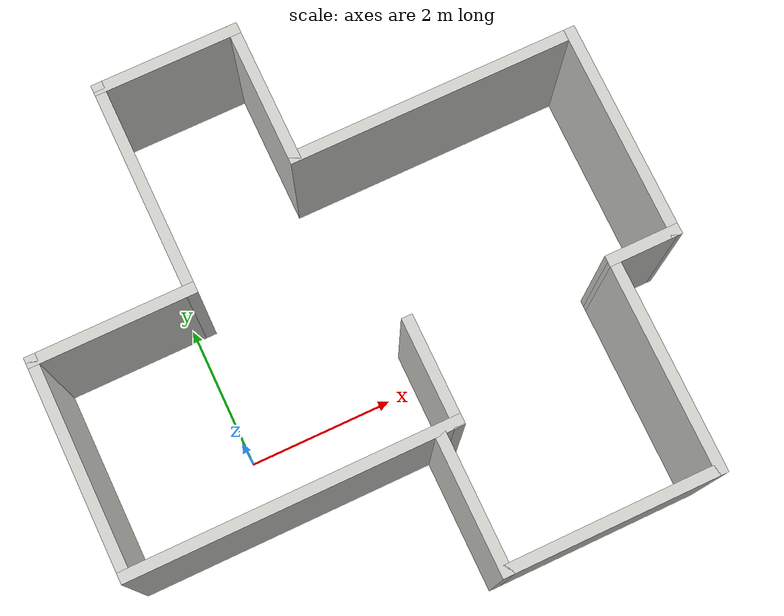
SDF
<?xml version='1.0'?>
<sdf version='1.6'>
  <model name='ekfWallsRight'>
    <pose frame=''>2 1 0 0 -0 -1.5708</pose>
    <link name='Wall_14'>
      <collision name='Wall_14_Collision'>
        <geometry>
          <box>
            <size>2.25 0.15 2.5</size>
          </box>
        </geometry>
        <pose frame=''>0 0 1.25 0 -0 0</pose>
      </collision>
      <visual name='Wall_14_Visual'>
        <pose frame=''>0 0 1.25 0 -0 0</pose>
        <geometry>
          <box>
            <size>2.25 0.15 2.5</size>
          </box>
        </geometry>
        <material>
          <script>
            <uri>file://media/materials/scripts/gazebo.material</uri>
            <name>Gazebo/CeilingTiled</name>
          </script>
	  <ambient>1 1 1 1</ambient>
        </material>
        <meta>
          <layer>0</layer>
        </meta>
      </visual>
      <pose frame=''>-0.924999 -2.85004 0 0 -0 1.5708</pose>
    </link>
    <link name='Wall_15'>
      <collision name='Wall_15_Collision'>
        <geometry>
          <box>
            <size>3 0.15 2.5</size>
          </box>
        </geometry>
        <pose frame=''>0 0 1.25 0 -0 0</pose>
      </collision>
      <visual name='Wall_15_Visual'>
        <pose frame=''>0 0 1.25 0 -0 0</pose>
        <geometry>
          <box>
            <size>3 0.15 2.5</size>
          </box>
        </geometry>
        <material>
          <script>
            <uri>file://media/materials/scripts/gazebo.material</uri>
            <name>Gazebo/CeilingTiled</name>
          </script>
          <ambient>1 1 1 1</ambient>
        </material>
        <meta>
          <layer>0</layer>
        </meta>
      </visual>
      <pose frame=''>-2.35 -1.80004 0 0 -0 3.14159</pose>
    </link>
    <link name='Wall_20'>
      <collision name='Wall_20_Collision'>
        <geometry>
          <box>
            <size>2 0.15 2.5</size>
          </box>
        </geometry>
        <pose frame=''>0 0 1.25 0 -0 0</pose>
      </collision>
      <visual name='Wall_20_Visual'>
        <pose frame=''>0 0 1.25 0 -0 0</pose>
        <geometry>
          <box>
            <size>2 0.15 2.5</size>
          </box>
        </geometry>
        <material>
          <script>
            <uri>file://media/materials/scripts/gazebo.material</uri>
            <name>Gazebo/CeilingTiled</name>
          </script>
          <ambient>1 1 1 1</ambient>
        </material>
        <meta>
          <layer>0</layer>
        </meta>
      </visual>
      <pose frame=''>-3.775 -0.875043 0 0 -0 1.5708</pose>
    </link>
    <link name='Wall_23'>
      <collision name='Wall_23_Collision'>
        <geometry>
          <box>
            <size>2 0.15 2.5</size>
          </box>
        </geometry>
        <pose frame=''>0 0 1.25 0 -0 0</pose>
      </collision>
      <visual name='Wall_23_Visual'>
        <pose frame=''>0 0 1.25 0 -0 0</pose>
        <geometry>
          <box>
            <size>2 0.15 2.5</size>
          </box>
        </geometry>
        <material>
          <script>
            <uri>file://media/materials/scripts/gazebo.material</uri>
            <name>Gazebo/CeilingTiled</name>
          </script>
          <ambient>1 1 1 1</ambient>
        </material>
        <meta>
          <layer>0</layer>
        </meta>
      </visual>
      <pose frame=''>-2.85 0.049957 0 0 -0 0</pose>
    </link>
    <link name='Wall_25'>
      <collision name='Wall_25_Collision'>
        <geometry>
          <box>
            <size>4 0.15 2.5</size>
          </box>
        </geometry>
        <pose frame=''>0 0 1.25 0 -0 0</pose>
      </collision>
      <visual name='Wall_25_Visual'>
        <pose frame=''>0 0 1.25 0 -0 0</pose>
        <geometry>
          <box>
            <size>4 0.15 2.5</size>
          </box>
        </geometry>
        <material>
          <script>
            <uri>file://media/materials/scripts/gazebo.material</uri>
            <name>Gazebo/CeilingTiled</name>
          </script>
          <ambient>1 1 1 1</ambient>
        </material>
        <meta>
          <layer>0</layer>
        </meta>
      </visual>
      <pose frame=''>-1.925 1.97496 0 0 -0 1.5708</pose>
    </link>
    <link name='Wall_26'>
      <collision name='Wall_26_Collision'>
        <geometry>
          <box>
            <size>3 0.15 2.5</size>
          </box>
        </geometry>
        <pose frame=''>0 0 1.25 0 -0 0</pose>
      </collision>
      <visual name='Wall_26_Visual'>
        <pose frame=''>0 0 1.25 0 -0 0</pose>
        <geometry>
          <box>
            <size>3 0.15 2.5</size>
          </box>
        </geometry>
        <material>
          <script>
            <uri>file://media/materials/scripts/gazebo.material</uri>
            <name>Gazebo/CeilingTiled</name>
          </script>
          <ambient>1 1 1 1</ambient>
        </material>
        <meta>
          <layer>0</layer>
        </meta>
      </visual>
      <pose frame=''>-0.5 3.89833 0 0 0 -0.001139</pose>
    </link>
    <link name='Wall_37'>
      <collision name='Wall_37_Collision'>
        <geometry>
          <box>
            <size>1 0.15 2.5</size>
          </box>
        </geometry>
        <pose frame=''>0 0 1.25 0 -0 0</pose>
      </collision>
      <visual name='Wall_37_Visual'>
        <pose frame=''>0 0 1.25 0 -0 0</pose>
        <geometry>
          <box>
            <size>1 0.15 2.5</size>
          </box>
        </geometry>
        <material>
          <script>
            <uri>file://media/materials/scripts/gazebo.material</uri>
            <name>Gazebo/CeilingTiled</name>
          </script>
          <ambient>1 1 1 1</ambient>
        </material>
        <meta>
          <layer>0</layer>
        </meta>
      </visual>
      <pose frame=''>0.924999 3.47171 0 0 0 -1.5708</pose>
    </link>
    <link name='Wall_39'>
      <collision name='Wall_39_Collision'>
        <geometry>
          <box>
            <size>3 0.15 2.5</size>
          </box>
        </geometry>
        <pose frame=''>0 0 1.25 0 -0 0</pose>
      </collision>
      <visual name='Wall_39_Visual'>
        <pose frame=''>0 0 1.25 0 -0 0</pose>
        <geometry>
          <box>
            <size>3 0.15 2.5</size>
          </box>
        </geometry>
        <material>
          <script>
            <uri>file://media/materials/scripts/gazebo.material</uri>
            <name>Gazebo/CeilingTiled</name>
          </script>
          <ambient>1 1 1 1</ambient>
        </material>
        <meta>
          <layer>0</layer>
        </meta>
      </visual>
      <pose frame=''>2.35 3.04671 0 0 -0 0</pose>
    </link>
    <link name='Wall_40'>
      <collision name='Wall_40_Collision'>
        <geometry>
          <box>
            <size>3 0.15 2.5</size>
          </box>
        </geometry>
        <pose frame=''>0 0 1.25 0 -0 0</pose>
      </collision>
      <visual name='Wall_40_Visual'>
        <pose frame=''>0 0 1.25 0 -0 0</pose>
        <geometry>
          <box>
            <size>3 0.15 2.5</size>
          </box>
        </geometry>
        <material>
          <script>
            <uri>file://media/materials/scripts/gazebo.material</uri>
            <name>Gazebo/CeilingTiled</name>
          </script>
          <ambient>1 1 1 1</ambient>
        </material>
        <meta>
          <layer>0</layer>
        </meta>
      </visual>
      <pose frame=''>3.775 1.62171 0 0 0 -1.5708</pose>
    </link>
    <link name='Wall_45'>
      <collision name='Wall_45_Collision'>
        <geometry>
          <box>
            <size>4.5 0.15 2.5</size>
          </box>
        </geometry>
        <pose frame=''>0 0 1.25 0 -0 0</pose>
      </collision>
      <visual name='Wall_45_Visual'>
        <pose frame=''>0 0 1.25 0 -0 0</pose>
        <geometry>
          <box>
            <size>4.5 0.15 2.5</size>
          </box>
        </geometry>
        <material>
          <script>
            <uri>file://media/materials/scripts/gazebo.material</uri>
            <name>Gazebo/CeilingTiled</name>
          </script>
          <ambient>1 1 1 1</ambient>
        </material>
        <meta>
          <layer>0</layer>
        </meta>
      </visual>
      <pose frame=''>1.925 -1.72504 0 0 -0 1.5708</pose>
    </link>
    <link name='Wall_48'>
      <collision name='Wall_48_Collision'>
        <geometry>
          <box>
            <size>1.5 0.15 2.5</size>
          </box>
        </geometry>
        <pose frame=''>0 0 1.25 0 -0 0</pose>
      </collision>
      <visual name='Wall_48_Visual'>
        <pose frame=''>0 0 1.25 0 -0 0</pose>
        <geometry>
          <box>
            <size>1.5 0.15 2.5</size>
          </box>
        </geometry>
        <material>
          <script>
            <uri>file://media/materials/scripts/gazebo.material</uri>
            <name>Gazebo/CeilingTiled</name>
          </script>
          <ambient>1 1 1 1</ambient>
        </material>
        <meta>
          <layer>0</layer>
        </meta>
      </visual>
      <pose frame=''>1.25 0.449957 0 0 -0 3.14159</pose>
    </link>
    <link name='Wall_50'>
      <collision name='Wall_50_Collision'>
        <geometry>
          <box>
            <size>2 0.15 2.5</size>
          </box>
        </geometry>
        <pose frame=''>0 0 1.25 0 -0 0</pose>
      </collision>
      <visual name='Wall_50_Visual'>
        <pose frame=''>0 0 1.25 0 -0 0</pose>
        <geometry>
          <box>
            <size>2 0.15 2.5</size>
          </box>
        </geometry>
        <material>
          <script>
            <uri>file://media/materials/scripts/gazebo.material</uri>
            <name>Gazebo/CeilingTiled</name>
          </script>
          <ambient>1 1 1 1</ambient>
        </material>
        <meta>
          <layer>0</layer>
        </meta>
      </visual>
      <pose frame=''>2.85 0.196712 0 0 -0 3.14159</pose>
    </link>
    <link name='Wall_9'>
      <collision name='Wall_9_Collision'>
        <geometry>
          <box>
            <size>3 0.15 2.5</size>
          </box>
        </geometry>
        <pose frame=''>0 0 1.25 0 -0 0</pose>
      </collision>
      <visual name='Wall_9_Visual'>
        <pose frame=''>0 0 1.25 0 -0 0</pose>
        <geometry>
          <box>
            <size>3 0.15 2.5</size>
          </box>
        </geometry>
        <material>
          <script>
            <uri>file://media/materials/scripts/gazebo.material</uri>
            <name>Gazebo/CeilingTiled</name>
          </script>
          <ambient>1 1 1 1</ambient>
        </material>
        <meta>
          <layer>0</layer>
        </meta>
      </visual>
      <pose frame=''>0.500001 -3.90004 0 0 -0 0</pose>
    </link>
    <static>1</static>
  </model>
</sdf>
